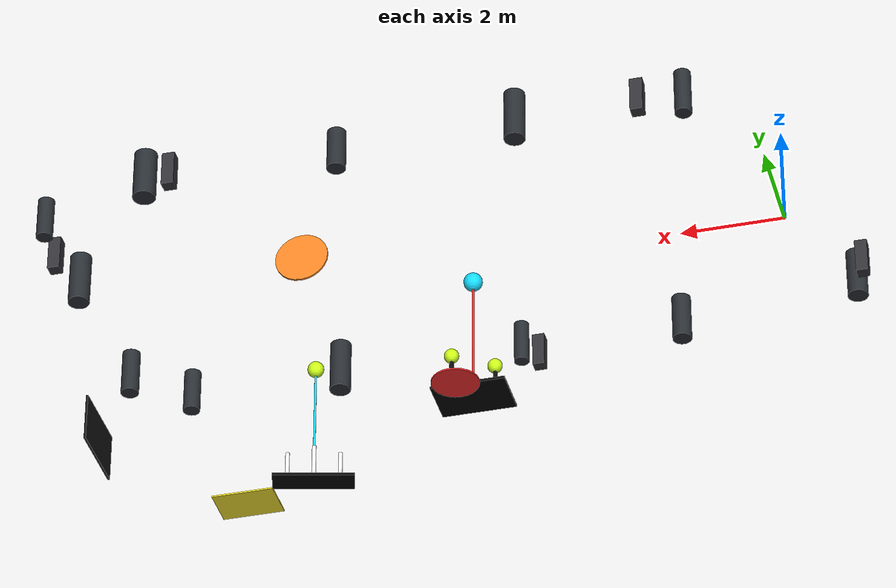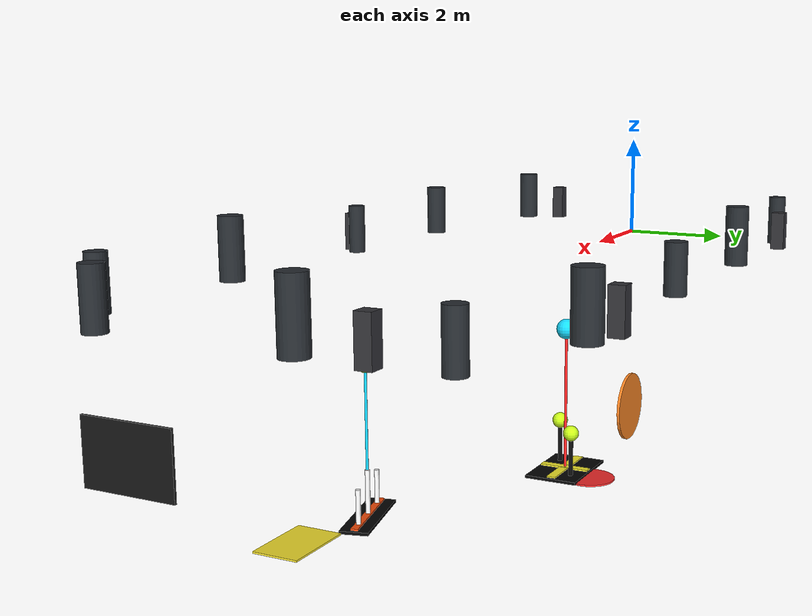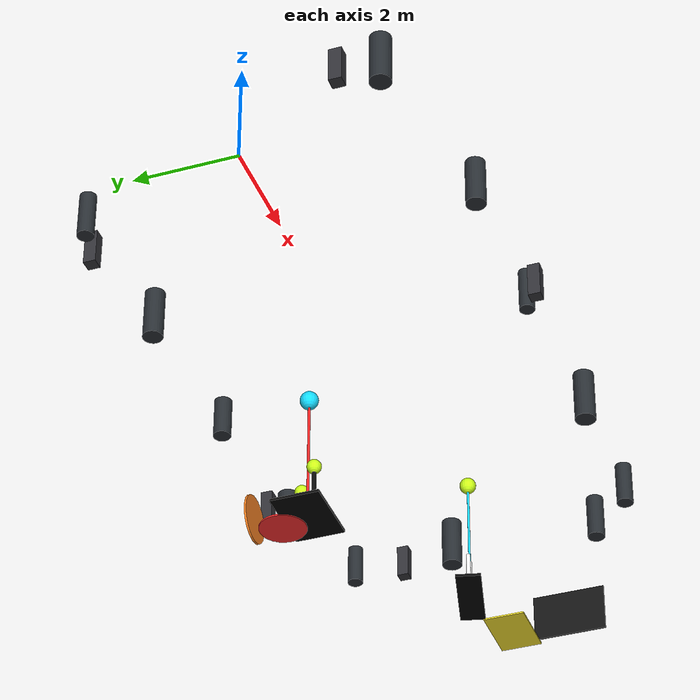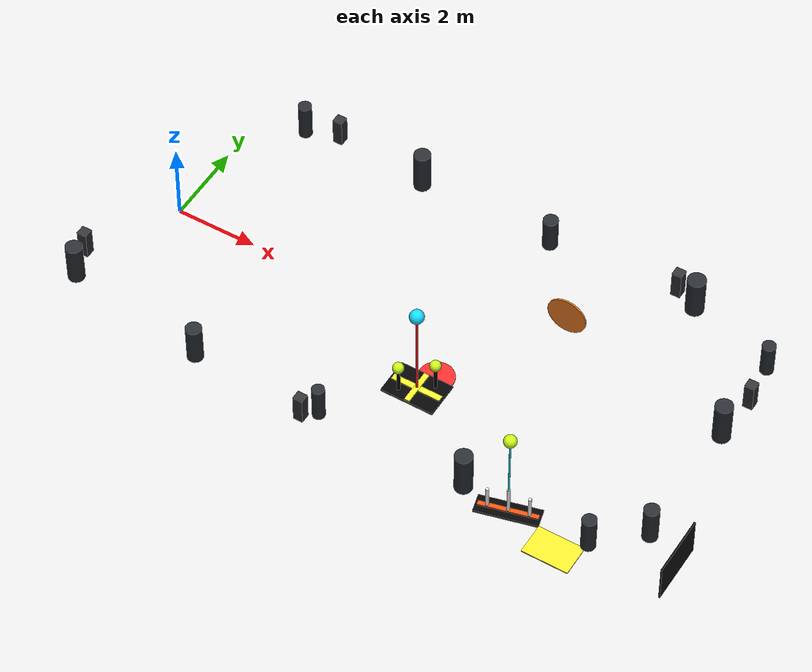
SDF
<?xml version="1.0" ?>
<sdf version="1.6">
  <model name="tank_targets">
    <static>true</static>
    <link name="tank_lidar_reference_post_a_link">
      <pose>2.00 3.68 0.45 0 0 0</pose>
      <collision name="post_collision">
        <geometry>
          <box>
            <size>0.24 0.24 0.70</size>
          </box>
        </geometry>
      </collision>
      <visual name="post_visual">
        <geometry>
          <box>
            <size>0.24 0.24 0.70</size>
          </box>
        </geometry>
        <material>
          <ambient>0.18 0.18 0.20 1</ambient>
          <diffuse>0.20 0.20 0.22 1</diffuse>
        </material>
      </visual>
    </link>
    <link name="tank_lidar_reference_post_b_link">
      <pose>5.60 -3.68 0.45 0 0 0</pose>
      <collision name="post_collision">
        <geometry>
          <box>
            <size>0.24 0.24 0.70</size>
          </box>
        </geometry>
      </collision>
      <visual name="post_visual">
        <geometry>
          <box>
            <size>0.24 0.24 0.70</size>
          </box>
        </geometry>
        <material>
          <ambient>0.18 0.18 0.20 1</ambient>
          <diffuse>0.20 0.20 0.22 1</diffuse>
        </material>
      </visual>
    </link>
    <link name="tank_lidar_reference_post_c_link">
      <pose>10.90 3.68 0.45 0 0 0</pose>
      <collision name="post_collision">
        <geometry>
          <box>
            <size>0.24 0.24 0.70</size>
          </box>
        </geometry>
      </collision>
      <visual name="post_visual">
        <geometry>
          <box>
            <size>0.24 0.24 0.70</size>
          </box>
        </geometry>
        <material>
          <ambient>0.18 0.18 0.20 1</ambient>
          <diffuse>0.20 0.20 0.22 1</diffuse>
        </material>
      </visual>
    </link>
    <link name="tank_lidar_reference_post_d_link">
      <pose>13.78 1.70 0.45 0 0 0</pose>
      <collision name="post_collision">
        <geometry>
          <box>
            <size>0.24 0.24 0.70</size>
          </box>
        </geometry>
      </collision>
      <visual name="post_visual">
        <geometry>
          <box>
            <size>0.24 0.24 0.70</size>
          </box>
        </geometry>
        <material>
          <ambient>0.18 0.18 0.20 1</ambient>
          <diffuse>0.20 0.20 0.22 1</diffuse>
        </material>
      </visual>
    </link>
    <link name="tank_lidar_reference_post_e_link">
      <pose>-1.08 -2.20 0.45 0 0 0</pose>
      <collision name="post_collision">
        <geometry>
          <box>
            <size>0.24 0.24 0.70</size>
          </box>
        </geometry>
      </collision>
      <visual name="post_visual">
        <geometry>
          <box>
            <size>0.24 0.24 0.70</size>
          </box>
        </geometry>
        <material>
          <ambient>0.18 0.18 0.20 1</ambient>
          <diffuse>0.20 0.20 0.22 1</diffuse>
        </material>
      </visual>
    </link>
    <link name="tank_lidar_registration_landmarks_link">
      <collision name="north_pylon_1_collision">
        <pose>1.20 3.45 0.56 0 0 0</pose>
        <geometry>
          <cylinder>
            <radius>0.16</radius>
            <length>0.92</length>
          </cylinder>
        </geometry>
      </collision>
      <visual name="north_pylon_1_visual">
        <pose>1.20 3.45 0.56 0 0 0</pose>
        <geometry>
          <cylinder>
            <radius>0.16</radius>
            <length>0.92</length>
          </cylinder>
        </geometry>
        <material>
          <ambient>0.12 0.14 0.16 1</ambient>
          <diffuse>0.16 0.18 0.20 1</diffuse>
        </material>
      </visual>
      <collision name="north_pylon_2_collision">
        <pose>4.35 3.47 0.62 0 0 0</pose>
        <geometry>
          <cylinder>
            <radius>0.20</radius>
            <length>1.04</length>
          </cylinder>
        </geometry>
      </collision>
      <visual name="north_pylon_2_visual">
        <pose>4.35 3.47 0.62 0 0 0</pose>
        <geometry>
          <cylinder>
            <radius>0.20</radius>
            <length>1.04</length>
          </cylinder>
        </geometry>
        <material>
          <ambient>0.12 0.14 0.16 1</ambient>
          <diffuse>0.16 0.18 0.20 1</diffuse>
        </material>
      </visual>
      <collision name="north_pylon_3_collision">
        <pose>7.75 3.43 0.52 0 0 0</pose>
        <geometry>
          <cylinder>
            <radius>0.18</radius>
            <length>0.84</length>
          </cylinder>
        </geometry>
      </collision>
      <visual name="north_pylon_3_visual">
        <pose>7.75 3.43 0.52 0 0 0</pose>
        <geometry>
          <cylinder>
            <radius>0.18</radius>
            <length>0.84</length>
          </cylinder>
        </geometry>
        <material>
          <ambient>0.12 0.14 0.16 1</ambient>
          <diffuse>0.16 0.18 0.20 1</diffuse>
        </material>
      </visual>
      <collision name="north_pylon_4_collision">
        <pose>11.45 3.46 0.60 0 0 0</pose>
        <geometry>
          <cylinder>
            <radius>0.22</radius>
            <length>1.00</length>
          </cylinder>
        </geometry>
      </collision>
      <visual name="north_pylon_4_visual">
        <pose>11.45 3.46 0.60 0 0 0</pose>
        <geometry>
          <cylinder>
            <radius>0.22</radius>
            <length>1.00</length>
          </cylinder>
        </geometry>
        <material>
          <ambient>0.12 0.14 0.16 1</ambient>
          <diffuse>0.16 0.18 0.20 1</diffuse>
        </material>
      </visual>
      <collision name="south_pylon_1_collision">
        <pose>2.70 -3.45 0.58 0 0 0</pose>
        <geometry>
          <cylinder>
            <radius>0.19</radius>
            <length>0.96</length>
          </cylinder>
        </geometry>
      </collision>
      <visual name="south_pylon_1_visual">
        <pose>2.70 -3.45 0.58 0 0 0</pose>
        <geometry>
          <cylinder>
            <radius>0.19</radius>
            <length>0.96</length>
          </cylinder>
        </geometry>
        <material>
          <ambient>0.12 0.14 0.16 1</ambient>
          <diffuse>0.16 0.18 0.20 1</diffuse>
        </material>
      </visual>
      <collision name="south_pylon_2_collision">
        <pose>5.90 -3.42 0.54 0 0 0</pose>
        <geometry>
          <cylinder>
            <radius>0.15</radius>
            <length>0.88</length>
          </cylinder>
        </geometry>
      </collision>
      <visual name="south_pylon_2_visual">
        <pose>5.90 -3.42 0.54 0 0 0</pose>
        <geometry>
          <cylinder>
            <radius>0.15</radius>
            <length>0.88</length>
          </cylinder>
        </geometry>
        <material>
          <ambient>0.12 0.14 0.16 1</ambient>
          <diffuse>0.16 0.18 0.20 1</diffuse>
        </material>
      </visual>
      <collision name="south_pylon_3_collision">
        <pose>9.60 -3.48 0.64 0 0 0</pose>
        <geometry>
          <cylinder>
            <radius>0.21</radius>
            <length>1.08</length>
          </cylinder>
        </geometry>
      </collision>
      <visual name="south_pylon_3_visual">
        <pose>9.60 -3.48 0.64 0 0 0</pose>
        <geometry>
          <cylinder>
            <radius>0.21</radius>
            <length>1.08</length>
          </cylinder>
        </geometry>
        <material>
          <ambient>0.12 0.14 0.16 1</ambient>
          <diffuse>0.16 0.18 0.20 1</diffuse>
        </material>
      </visual>
      <collision name="south_pylon_4_collision">
        <pose>12.65 -3.44 0.55 0 0 0</pose>
        <geometry>
          <cylinder>
            <radius>0.17</radius>
            <length>0.90</length>
          </cylinder>
        </geometry>
      </collision>
      <visual name="south_pylon_4_visual">
        <pose>12.65 -3.44 0.55 0 0 0</pose>
        <geometry>
          <cylinder>
            <radius>0.17</radius>
            <length>0.90</length>
          </cylinder>
        </geometry>
        <material>
          <ambient>0.12 0.14 0.16 1</ambient>
          <diffuse>0.16 0.18 0.20 1</diffuse>
        </material>
      </visual>
      <collision name="east_pylon_1_collision">
        <pose>13.65 -2.55 0.57 0 0 0</pose>
        <geometry>
          <cylinder>
            <radius>0.18</radius>
            <length>0.94</length>
          </cylinder>
        </geometry>
      </collision>
      <visual name="east_pylon_1_visual">
        <pose>13.65 -2.55 0.57 0 0 0</pose>
        <geometry>
          <cylinder>
            <radius>0.18</radius>
            <length>0.94</length>
          </cylinder>
        </geometry>
        <material>
          <ambient>0.12 0.14 0.16 1</ambient>
          <diffuse>0.16 0.18 0.20 1</diffuse>
        </material>
      </visual>
      <collision name="east_pylon_2_collision">
        <pose>13.67 0.60 0.63 0 0 0</pose>
        <geometry>
          <cylinder>
            <radius>0.21</radius>
            <length>1.06</length>
          </cylinder>
        </geometry>
      </collision>
      <visual name="east_pylon_2_visual">
        <pose>13.67 0.60 0.63 0 0 0</pose>
        <geometry>
          <cylinder>
            <radius>0.21</radius>
            <length>1.06</length>
          </cylinder>
        </geometry>
        <material>
          <ambient>0.12 0.14 0.16 1</ambient>
          <diffuse>0.16 0.18 0.20 1</diffuse>
        </material>
      </visual>
      <collision name="east_pylon_3_collision">
        <pose>13.64 2.75 0.52 0 0 0</pose>
        <geometry>
          <cylinder>
            <radius>0.16</radius>
            <length>0.84</length>
          </cylinder>
        </geometry>
      </collision>
      <visual name="east_pylon_3_visual">
        <pose>13.64 2.75 0.52 0 0 0</pose>
        <geometry>
          <cylinder>
            <radius>0.16</radius>
            <length>0.84</length>
          </cylinder>
        </geometry>
        <material>
          <ambient>0.12 0.14 0.16 1</ambient>
          <diffuse>0.16 0.18 0.20 1</diffuse>
        </material>
      </visual>
      <collision name="west_pylon_1_collision">
        <pose>-0.86 -2.90 0.60 0 0 0</pose>
        <geometry>
          <cylinder>
            <radius>0.20</radius>
            <length>1.00</length>
          </cylinder>
        </geometry>
      </collision>
      <visual name="west_pylon_1_visual">
        <pose>-0.86 -2.90 0.60 0 0 0</pose>
        <geometry>
          <cylinder>
            <radius>0.20</radius>
            <length>1.00</length>
          </cylinder>
        </geometry>
        <material>
          <ambient>0.12 0.14 0.16 1</ambient>
          <diffuse>0.16 0.18 0.20 1</diffuse>
        </material>
      </visual>
    </link>
    <link name="floor_circle_mid_tank_link">
      <pose>6.00 1.40 -3.645 0 0 0</pose>
      <collision name="target_collision">
        <geometry>
          <cylinder>
            <radius>0.45</radius>
            <length>0.03</length>
          </cylinder>
        </geometry>
      </collision>
      <visual name="target_visual">
        <geometry>
          <cylinder>
            <radius>0.45</radius>
            <length>0.03</length>
          </cylinder>
        </geometry>
        <material>
          <ambient>0.88 0.12 0.12 1</ambient>
          <diffuse>0.98 0.18 0.18 1</diffuse>
        </material>
      </visual>
    </link>
    <link name="floor_rect_far_tank_link">
      <pose>10.80 -1.50 -3.645 0 0 0</pose>
      <collision name="target_collision">
        <geometry>
          <box>
            <size>1.20 0.80 0.03</size>
          </box>
        </geometry>
      </collision>
      <visual name="target_visual">
        <geometry>
          <box>
            <size>1.20 0.80 0.03</size>
          </box>
        </geometry>
        <material>
          <ambient>0.96 0.86 0.12 1</ambient>
          <diffuse>0.98 0.90 0.18 1</diffuse>
        </material>
      </visual>
    </link>
    <link name="bottom_marker_rig_mid_tank_link">
      <pose>5.80 0.85 -3.645 0 0 0</pose>
      <collision name="weighted_base_collision">
        <pose>0 0 0.025 0 0 0</pose>
        <geometry>
          <box>
            <size>1.40 0.95 0.05</size>
          </box>
        </geometry>
      </collision>
      <visual name="weighted_base_visual">
        <pose>0 0 0.025 0 0 0</pose>
        <geometry>
          <box>
            <size>1.40 0.95 0.05</size>
          </box>
        </geometry>
        <material>
          <ambient>0.02 0.02 0.02 1</ambient>
          <diffuse>0.02 0.02 0.02 1</diffuse>
        </material>
      </visual>
      <visual name="base_marker_cross_visual">
        <pose>0 0 0.06 0 0 0</pose>
        <geometry>
          <box>
            <size>1.30 0.16 0.03</size>
          </box>
        </geometry>
        <material>
          <ambient>0.98 0.92 0.12 1</ambient>
          <diffuse>1.0 0.95 0.18 1</diffuse>
        </material>
      </visual>
      <visual name="base_marker_cross_visual_orthogonal">
        <pose>0 0 0.065 0 0 1.570796</pose>
        <geometry>
          <box>
            <size>0.90 0.14 0.03</size>
          </box>
        </geometry>
        <material>
          <ambient>0.98 0.92 0.12 1</ambient>
          <diffuse>1.0 0.95 0.18 1</diffuse>
        </material>
      </visual>
      <collision name="short_rod_left_collision">
        <pose>-0.35 -0.25 0.38 0 0 0</pose>
        <geometry>
          <cylinder>
            <radius>0.04</radius>
            <length>0.70</length>
          </cylinder>
        </geometry>
      </collision>
      <visual name="short_rod_left_visual">
        <pose>-0.35 -0.25 0.38 0 0 0</pose>
        <geometry>
          <cylinder>
            <radius>0.04</radius>
            <length>0.70</length>
          </cylinder>
        </geometry>
        <material>
          <ambient>0.05 0.05 0.05 1</ambient>
          <diffuse>0.04 0.04 0.04 1</diffuse>
        </material>
      </visual>
      <collision name="short_rod_right_collision">
        <pose>0.35 0.25 0.38 0 0 0</pose>
        <geometry>
          <cylinder>
            <radius>0.04</radius>
            <length>0.70</length>
          </cylinder>
        </geometry>
      </collision>
      <visual name="short_rod_right_visual">
        <pose>0.35 0.25 0.38 0 0 0</pose>
        <geometry>
          <cylinder>
            <radius>0.04</radius>
            <length>0.70</length>
          </cylinder>
        </geometry>
        <material>
          <ambient>0.05 0.05 0.05 1</ambient>
          <diffuse>0.04 0.04 0.04 1</diffuse>
        </material>
      </visual>
      <collision name="tennis_ball_left_collision">
        <pose>-0.35 -0.25 0.82 0 0 0</pose>
        <geometry>
          <sphere>
            <radius>0.14</radius>
          </sphere>
        </geometry>
      </collision>
      <visual name="tennis_ball_left_visual">
        <pose>-0.35 -0.25 0.82 0 0 0</pose>
        <geometry>
          <sphere>
            <radius>0.14</radius>
          </sphere>
        </geometry>
        <material>
          <ambient>0.72 1.0 0.06 1</ambient>
          <diffuse>0.80 1.0 0.10 1</diffuse>
        </material>
      </visual>
      <collision name="tennis_ball_right_collision">
        <pose>0.35 0.25 0.82 0 0 0</pose>
        <geometry>
          <sphere>
            <radius>0.14</radius>
          </sphere>
        </geometry>
      </collision>
      <visual name="tennis_ball_right_visual">
        <pose>0.35 0.25 0.82 0 0 0</pose>
        <geometry>
          <sphere>
            <radius>0.14</radius>
          </sphere>
        </geometry>
        <material>
          <ambient>0.72 1.0 0.06 1</ambient>
          <diffuse>0.80 1.0 0.10 1</diffuse>
        </material>
      </visual>
      <collision name="sonar_tether_collision">
        <pose>0.0 0.0 1.30 0 0 0</pose>
        <geometry>
          <cylinder>
            <radius>0.025</radius>
            <length>2.55</length>
          </cylinder>
        </geometry>
      </collision>
      <visual name="sonar_tether_visual">
        <pose>0.0 0.0 1.30 0 0 0</pose>
        <geometry>
          <cylinder>
            <radius>0.025</radius>
            <length>2.55</length>
          </cylinder>
        </geometry>
        <material>
          <ambient>0.95 0.10 0.10 1</ambient>
          <diffuse>1.0 0.14 0.14 1</diffuse>
        </material>
      </visual>
      <collision name="upper_marker_collision">
        <pose>0.0 0.0 2.62 0 0 0</pose>
        <geometry>
          <sphere>
            <radius>0.18</radius>
          </sphere>
        </geometry>
      </collision>
      <visual name="upper_marker_visual">
        <pose>0.0 0.0 2.62 0 0 0</pose>
        <geometry>
          <sphere>
            <radius>0.18</radius>
          </sphere>
        </geometry>
        <material>
          <ambient>0.05 0.80 1.0 1</ambient>
          <diffuse>0.08 0.86 1.0 1</diffuse>
        </material>
      </visual>
    </link>
    <link name="bottom_rod_line_far_tank_link">
      <pose>9.40 -1.10 -3.645 0 0 0.25</pose>
      <collision name="weighted_base_collision">
        <pose>0 0 0.025 0 0 0</pose>
        <geometry>
          <box>
            <size>1.55 0.48 0.05</size>
          </box>
        </geometry>
      </collision>
      <visual name="weighted_base_visual">
        <pose>0 0 0.025 0 0 0</pose>
        <geometry>
          <box>
            <size>1.55 0.48 0.05</size>
          </box>
        </geometry>
        <material>
          <ambient>0.02 0.02 0.02 1</ambient>
          <diffuse>0.02 0.02 0.02 1</diffuse>
        </material>
      </visual>
      <visual name="line_marker_visual">
        <pose>0 0 0.065 0 0 0</pose>
        <geometry>
          <box>
            <size>1.45 0.12 0.03</size>
          </box>
        </geometry>
        <material>
          <ambient>0.98 0.25 0.04 1</ambient>
          <diffuse>1.0 0.32 0.06 1</diffuse>
        </material>
      </visual>
      <collision name="short_rod_a_collision">
        <pose>-0.50 0 0.34 0 0 0</pose>
        <geometry>
          <cylinder>
            <radius>0.04</radius>
            <length>0.62</length>
          </cylinder>
        </geometry>
      </collision>
      <visual name="short_rod_a_visual">
        <pose>-0.50 0 0.34 0 0 0</pose>
        <geometry>
          <cylinder>
            <radius>0.04</radius>
            <length>0.62</length>
          </cylinder>
        </geometry>
        <material>
          <ambient>0.94 0.94 0.94 1</ambient>
          <diffuse>0.98 0.98 0.98 1</diffuse>
        </material>
      </visual>
      <collision name="short_rod_b_collision">
        <pose>0 0 0.42 0 0 0</pose>
        <geometry>
          <cylinder>
            <radius>0.04</radius>
            <length>0.78</length>
          </cylinder>
        </geometry>
      </collision>
      <visual name="short_rod_b_visual">
        <pose>0 0 0.42 0 0 0</pose>
        <geometry>
          <cylinder>
            <radius>0.04</radius>
            <length>0.78</length>
          </cylinder>
        </geometry>
        <material>
          <ambient>0.94 0.94 0.94 1</ambient>
          <diffuse>0.98 0.98 0.98 1</diffuse>
        </material>
      </visual>
      <collision name="short_rod_c_collision">
        <pose>0.50 0 0.34 0 0 0</pose>
        <geometry>
          <cylinder>
            <radius>0.04</radius>
            <length>0.62</length>
          </cylinder>
        </geometry>
      </collision>
      <visual name="short_rod_c_visual">
        <pose>0.50 0 0.34 0 0 0</pose>
        <geometry>
          <cylinder>
            <radius>0.04</radius>
            <length>0.62</length>
          </cylinder>
        </geometry>
        <material>
          <ambient>0.94 0.94 0.94 1</ambient>
          <diffuse>0.98 0.98 0.98 1</diffuse>
        </material>
      </visual>
      <collision name="sonar_tether_collision">
        <pose>0.0 0.0 1.30 0 0 0</pose>
        <geometry>
          <cylinder>
            <radius>0.022</radius>
            <length>2.45</length>
          </cylinder>
        </geometry>
      </collision>
      <visual name="sonar_tether_visual">
        <pose>0.0 0.0 1.30 0 0 0</pose>
        <geometry>
          <cylinder>
            <radius>0.022</radius>
            <length>2.45</length>
          </cylinder>
        </geometry>
        <material>
          <ambient>0.05 0.80 1.0 1</ambient>
          <diffuse>0.08 0.86 1.0 1</diffuse>
        </material>
      </visual>
      <collision name="upper_marker_collision">
        <pose>0.0 0.0 2.58 0 0 0</pose>
        <geometry>
          <sphere>
            <radius>0.16</radius>
          </sphere>
        </geometry>
      </collision>
      <visual name="upper_marker_visual">
        <pose>0.0 0.0 2.58 0 0 0</pose>
        <geometry>
          <sphere>
            <radius>0.16</radius>
          </sphere>
        </geometry>
        <material>
          <ambient>0.72 1.0 0.06 1</ambient>
          <diffuse>0.80 1.0 0.10 1</diffuse>
        </material>
      </visual>
    </link>
    <link name="wall_rect_far_east_link">
      <pose>13.99 -1.80 -1.40 0 0 0</pose>
      <collision name="target_collision">
        <geometry>
          <box>
            <size>0.04 1.50 1.00</size>
          </box>
        </geometry>
      </collision>
      <visual name="target_visual">
        <geometry>
          <box>
            <size>0.04 1.50 1.00</size>
          </box>
        </geometry>
        <material>
          <ambient>0.12 0.12 0.12 1</ambient>
          <diffuse>0.08 0.08 0.08 1</diffuse>
          <specular>0.02 0.02 0.02 1</specular>
        </material>
      </visual>
    </link>
    <link name="wall_circle_north_link">
      <pose>8.50 3.00 -1.50 1.570796 0 0</pose>
      <collision name="target_collision">
        <geometry>
          <cylinder>
            <radius>0.50</radius>
            <length>0.04</length>
          </cylinder>
        </geometry>
      </collision>
      <visual name="target_visual">
        <geometry>
          <cylinder>
            <radius>0.50</radius>
            <length>0.04</length>
          </cylinder>
        </geometry>
        <material>
          <ambient>0.95 0.45 0.10 1</ambient>
          <diffuse>0.98 0.52 0.14 1</diffuse>
        </material>
      </visual>
    </link>
  </model>
</sdf>
